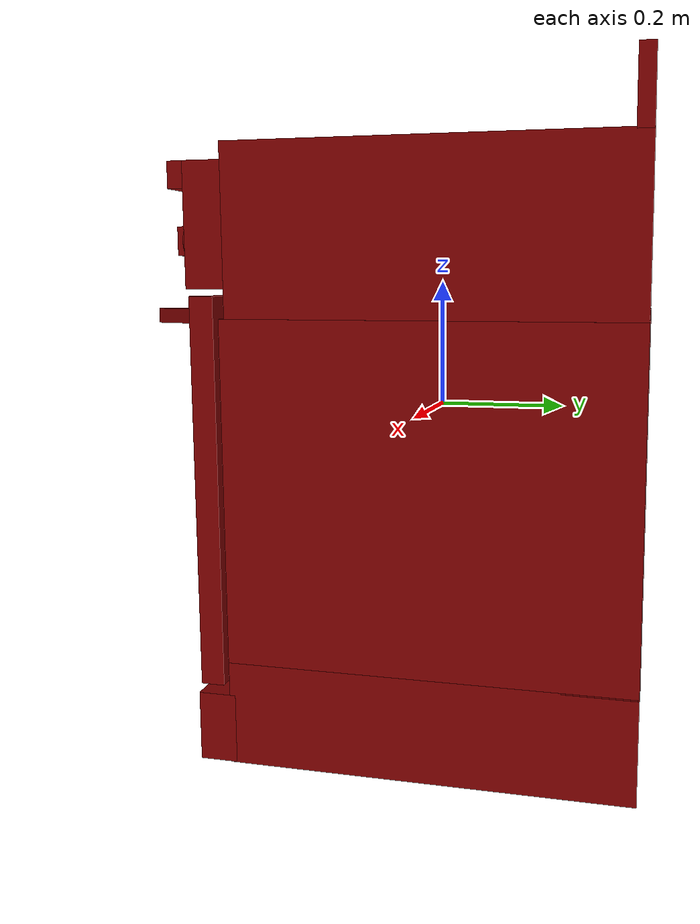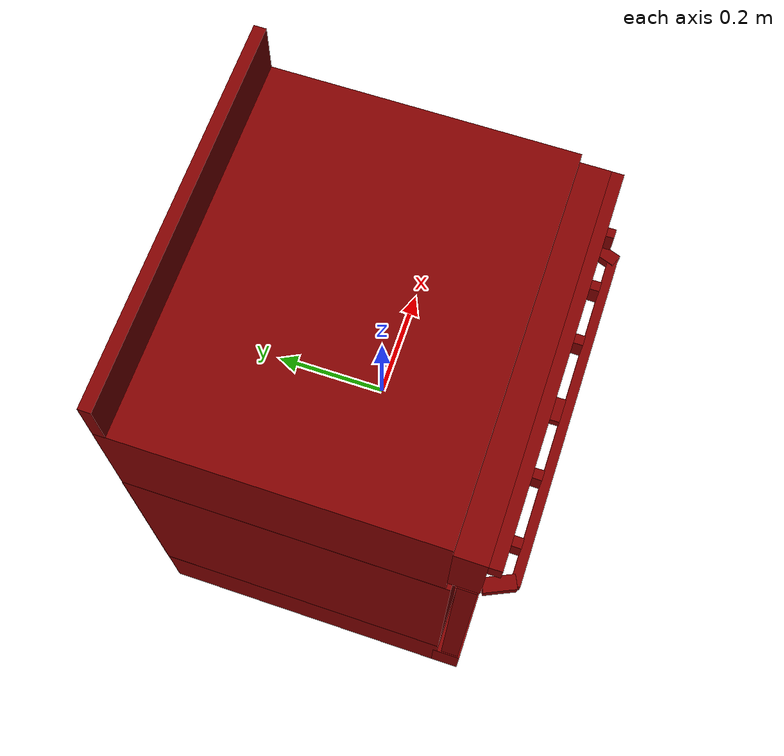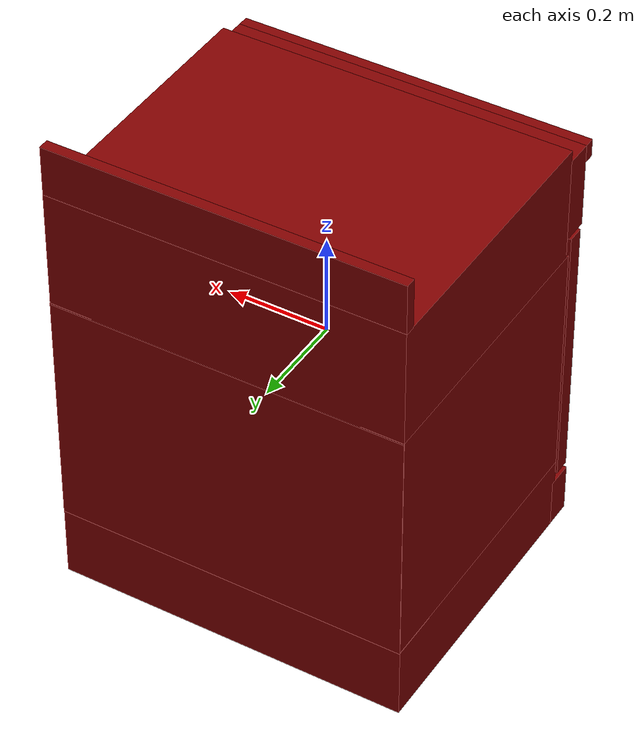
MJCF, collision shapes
<?xml version='1.0' encoding='UTF-8'?>
<mujoco model="model">
  <compiler angle="radian"/>
  <asset>
    <mesh file="visuals/knob_front_left.obj" name="knob_front_left_vis"/>
    <mesh file="visuals/knob_front_right.obj" name="knob_front_right_vis"/>
    <mesh file="visuals/knob_rear_left.obj" name="knob_rear_left_vis"/>
    <mesh file="visuals/knob_rear_right.obj" name="knob_rear_right_vis"/>
    <mesh file="visuals/Body001.obj" name="Body001_vis"/>
    <mesh file="visuals/Door001.obj" name="Door001_vis"/>
    <mesh file="visuals/Door001_Clear.obj" name="Door001_Clear_vis"/>
    <mesh file="visuals/Knob001.obj" name="Knob001_vis"/>
    <mesh file="visuals/Knob002.obj" name="Knob002_vis"/>
    <mesh file="visuals/Shelf001.obj" name="Shelf001_vis"/>
    <mesh file="visuals/Shelf002.obj" name="Shelf002_vis"/>
    <texture file="visuals/T_BC001.png" name="Body001_material" type="2d"/>
    <material name="Body001_material" rgba="1 1 1 1.0" texture="Body001_material" shininess="0.1" specular="3"/>
    <texture file="visuals/T_BC001.png" name="knob_front_left_material" type="2d"/>
    <material name="knob_front_left_material" rgba="1 1 1 1.0" texture="knob_front_left_material" shininess="0.1" specular="1"/>
    <texture file="visuals/T_BC001.png" name="knob_front_right_material" type="2d"/>
    <material name="knob_front_right_material" rgba="1 1 1 1.0" texture="knob_front_right_material" shininess="0.1" specular="1"/>
    <texture file="visuals/T_BC001.png" name="knob_rear_left_material" type="2d"/>
    <material name="knob_rear_left_material" rgba="1 1 1 1.0" texture="knob_rear_left_material" shininess="0.1" specular="1"/>
    <texture file="visuals/T_BC001.png" name="knob_rear_right_material" type="2d"/>
    <material name="knob_rear_right_material" rgba="1 1 1 1.0" texture="knob_rear_right_material" shininess="0.1" specular="1"/>
    <texture file="visuals/T_BC001.png" name="Door001_material" type="2d"/>
    <material name="Door001_material" rgba="1 1 1 1.0" texture="Door001_material" shininess="0.1" specular="1"/>
    <texture file="visuals/T_BC001.png" name="Door001_Clear_material" type="2d"/>
    <material name="Door001_Clear_material" rgba="1 1 1 0.5" texture="Door001_Clear_material" shininess="0.1" specular="1"/>
    <texture file="visuals/T_BC001.png" name="Knob001_material" type="2d"/>
    <material name="Knob001_material" rgba="1 1 1 1.0" texture="Knob001_material" shininess="0.1" specular="1"/>
    <texture file="visuals/T_BC001.png" name="Knob002_material" type="2d"/>
    <material name="Knob002_material" rgba="1 1 1 1.0" texture="Knob002_material" shininess="0.1" specular="1"/>
    <texture file="visuals/T_BC001.png" name="Shelf001_material" type="2d"/>
    <material name="Shelf001_material" rgba="1 1 1 1.0" texture="Shelf001_material" shininess="0.1" specular="1"/>
    <texture file="visuals/T_BC001.png" name="Shelf002_material" type="2d"/>
    <material name="Shelf002_material" rgba="1 1 1 1.0" texture="Shelf002_material" shininess="0.1" specular="1"/>
  </asset>
  <default>
    <default class="visual">
      <geom conaffinity="0" contype="0" group="1" type="mesh"/>
    </default>
    <default class="collision">
      <geom group="0" rgba="0.5 0 0 0.5"/>
    </default>
    <default class="spawn">
      <geom group="0" rgba="1 1 1 0.5" contype="0" conaffinity="0"/>
      <site group="0" rgba="1 1 1 0.5"/>
    </default>
    <default class="region">
      <geom group="1" conaffinity="0" contype="0" rgba="0 1 0 0"/>
    </default>
  </default>
  <worldbody>
    <body>
      <body name="object">
        <site type="cylinder" rgba="0.3 0.4 1 0.5" size="0.04274687170982361 0.008889059536159039" pos="0.15967822074890137 0.17787054181098938 0.3574436604976654" name="burner_on_rear_right"/>
        <site type="cylinder" rgba="0.3 0.4 1 0.5" size="0.04606814682483673 0.008889058604836464" pos="0.1597423553466797 -0.08112291246652603 0.3574436604976654" name="burner_on_front_right"/>
        <site type="cylinder" rgba="0.3 0.4 1 0.5" size="0.037669356912374496 0.008889059536159039" pos="-0.16014519333839417 -0.08022329956293106 0.3574436604976654" name="burner_on_front_left"/>
        <site type="cylinder" rgba="0.3 0.4 1 0.5" size="0.03731134906411171 0.008889059536159039" pos="-0.16021078824996948 0.1778567135334015 0.3574436604976654" name="burner_on_rear_left"/>
        <geom mesh="Body001_vis" type="mesh" solimp="0.998 0.998 0.001" solref="0.001 1" density="100" friction="0.95 0.3 0.1" class="visual" material="Body001_material"/>
        <geom class="collision" type="box" pos="-0.00014746803208254278 0.05135912820696831 -0.4064618647098541" size="0.34942737221717834 0.28487372398376465 0.07652396708726883" quat="1.0 0.0 0.0 0.0"/>
        <geom class="collision" type="box" pos="-0.00014746803208254278 0.2861902415752411 -0.09431956708431244" size="0.34942737221717834 0.050824426114559174 0.24223265051841736" quat="1.0 0.0 0.0 0.0"/>
        <geom class="collision" type="box" pos="-0.00014746803208254278 0.055293865501880646 0.2639613151550293" size="0.34942737221717834 0.2807837128639221 0.12020580470561981" quat="1.0 0.0 0.0 0.0"/>
        <geom class="collision" type="box" pos="-0.0001474630698794499 -0.25239092111587524 0.27547764778137207" size="0.3494277000427246 0.02705969661474228 0.08506572991609573" quat="1.0 0.0 0.0 0.0"/>
        <geom class="collision" type="box" pos="-0.0001474605523981154 0.32500842213630676 0.43238362669944763" size="0.34942758083343506 0.010730232112109661 0.050436194986104965" quat="1.0 0.0 0.0 0.0"/>
        <geom class="collision" type="box" pos="-0.0001474668097216636 -0.27820074558258057 0.34203529357910156" size="0.3494274616241455 0.022705255076289177 0.018246155232191086" quat="1.0 0.0 0.0 0.0"/>
        <geom class="collision" type="box" pos="-0.0001474727177992463 -0.25263890624046326 -0.4327547252178192" size="0.34942758083343506 0.027300572022795677 0.049705494195222855" quat="1.0 0.0 0.0 0.0"/>
        <geom class="collision" type="box" pos="-0.30808332562446594 0.05135912075638771 -0.09207580983638763" size="0.04168785735964775 0.2848801910877228 0.24247300624847412" quat="1.0 0.0 0.0 0.0"/>
        <geom class="collision" type="box" pos="0.3076491057872772 0.05135912075638771 -0.09207580983638763" size="0.04201505705714226 0.2848798930644989 0.2424728125333786" quat="1.0 0.0 0.0 0.0"/>
        <body name="knob_front_left">
          <joint axis="0.0 -1.0 0.0" pos="-0.2754005193710327 -0.2984381914138794 0.2563842535018921" limited="true" name="knob_front_left_joint" range="0.0 3.3161255787892263" type="hinge" damping="0.05" armature="0.001"/>
          <geom mesh="knob_front_left_vis" type="mesh" solimp="0.998 0.998 0.001" solref="0.001 1" density="100" friction="0.95 0.3 0.1" class="visual" material="knob_front_left_material"/>
          <geom class="collision" type="cylinder" pos="-0.2757011950016022 -0.2924758195877075 0.2560778260231018" size="0.026179928332567215 0.0076294029131531715" quat="0.7071067094802856 0.70710688829422 0.0 0.0"/>
          <geom class="collision" type="box" pos="-0.27576297521591187 -0.30898553133010864 0.25702792406082153" size="0.008614372462034225 0.009282308630645275 0.020264428108930588" quat="1.0 0.0 0.0 0.0" name="knob_front_left_main"/>
        </body>
        <body name="knob_front_right">
          <joint axis="0.0 -1.0 0.0" pos="0.28673580288887024 -0.2984381914138794 0.2563842535018921" limited="true" name="knob_front_right_joint" range="0.0 3.368485456349056" type="hinge" damping="0.05" armature="0.001"/>
          <geom mesh="knob_front_right_vis" type="mesh" solimp="0.998 0.998 0.001" solref="0.001 1" density="100" friction="0.95 0.3 0.1" class="visual" material="knob_front_right_material"/>
          <geom class="collision" type="box" pos="0.28748977184295654 -0.30898553133010864 0.25702792406082153" size="0.008614372462034225 0.007597616408020258 0.0202644020318985" quat="1.0 0.0 0.0 0.0" name="knob_front_right_main"/>
          <geom class="collision" type="cylinder" pos="0.287524938583374 -0.2924758195877075 0.2560778260231018" size="0.026179928332567215 0.0076294029131531715" quat="0.7071067094802856 0.70710688829422 0.0 0.0"/>
        </body>
        <body name="knob_rear_left">
          <joint axis="0.0 -1.0 0.0" pos="-0.1616622656583786 -0.2984381914138794 0.2563842535018921" limited="true" name="knob_rear_left_joint" range="0.0 3.3161255787892263" type="hinge" damping="0.05" armature="0.001"/>
          <geom mesh="knob_rear_left_vis" type="mesh" solimp="0.998 0.998 0.001" solref="0.001 1" density="100" friction="0.95 0.3 0.1" class="visual" material="knob_rear_left_material"/>
          <geom class="collision" type="cylinder" pos="-0.1614503115415573 -0.2924758195877075 0.2560778260231018" size="0.026179928332567215 0.0076294029131531715" quat="0.7071067094802856 0.70710688829422 0.0 0.0"/>
          <geom class="collision" type="box" pos="-0.1615120768547058 -0.30898553133010864 0.25702792406082153" size="0.008614372462034225 0.009282300248742104 0.020264428108930588" quat="1.0 0.0 0.0 0.0" name="knob_rear_left_main"/>
        </body>
        <body name="knob_rear_right">
          <joint axis="0.0 -1.0 0.0" pos="0.18417790532112122 -0.2984381914138794 0.2563842535018921" limited="true" name="knob_rear_right_joint" range="0.0 3.4033920413889422" type="hinge" damping="0.05" armature="0.001"/>
          <geom mesh="knob_rear_right_vis" type="mesh" solimp="0.998 0.998 0.001" solref="0.001 1" density="100" friction="0.95 0.3 0.1" class="visual" material="knob_rear_right_material"/>
          <geom class="collision" type="cylinder" pos="0.18332833051681519 -0.2924758195877075 0.2560778260231018" size="0.026179928332567215 0.0076294029131531715" quat="0.7071067094802856 0.70710688829422 0.0 0.0"/>
          <geom class="collision" type="box" pos="0.1832665652036667 -0.30898553133010864 0.25702792406082153" size="0.008614372462034225 0.009282290935516357 0.020264428108930588" quat="1.0 0.0 0.0 0.0" name="knob_rear_right_main"/>
        </body>
        <body name="Door001">
          <joint axis="1.0 0.0 0.0" pos="-7.106114935595542e-05 -0.28316956758499146 -0.37431401014328003" limited="true" name="Door001_joint" range="0.0 1.5707963267948966" type="hinge" damping="1" frictionloss="1" armature=".01" stiffness="0.05"/>
          <geom mesh="Door001_vis" type="mesh" solimp="0.998 0.998 0.001" solref="0.001 1" density="100" friction="0.95 0.3 0.1" class="visual" material="Door001_material"/>
          <geom class="collision" type="box" pos="-0.00014746803208254278 -0.2586946487426758 -0.09400005638599396" size="0.3494284451007843 0.016997987404465675 0.27487221360206604" quat="1.0 0.0 0.0 0.0"/>
          <geom class="collision" type="box" pos="-0.3170848488807678 -0.3034972548484802 0.1535831093788147" size="0.012553542852401733 0.027932176366448402 0.009833773598074913" quat="1.9360556962055853e-06 0.21596013009548187 -0.9764021635055542 4.28215685133182e-07"/>
          <geom class="collision" type="box" pos="0.3143838047981262 -0.30614203214645386 0.15364345908164978" size="0.011710848659276962 0.030119679868221283 0.009894125163555145" quat="1.9520919067872455e-06 -0.17544248700141907 -0.9844896793365479 -3.478755843389081e-07"/>
          <geom class="collision" type="box" pos="0.0003963177732657641 -0.32848870754241943 0.1529311239719391" size="0.31237438321113586 0.008542908355593681 0.009181818924844265" quat="1.0 0.0 0.0 0.0"/>
          <body name="Door001_Clear">
            <geom mesh="Door001_Clear_vis" type="mesh" solimp="0.998 0.998 0.001" solref="0.001 1" density="100" friction="0.95 0.3 0.1" class="visual" material="Door001_Clear_material"/>
            <geom class="collision" type="box" pos="-1.4901161193847656e-08 -0.27844947576522827 -0.09371771663427353" size="0.21943971514701843 0.001523040933534503 0.18236695230007172" quat="1.0 0.0 0.0 0.0"/>
          </body>
        </body>
        <body name="Knob001">
          <joint axis="0.0 1.0 0.0" pos="-0.04333847016096115 -0.2984381914138794 0.2563842535018921" limited="true" name="Knob001_joint" range="0.0 5.235987755982989" type="hinge" damping="0.05" armature="0.001"/>
          <geom mesh="Knob001_vis" type="mesh" solimp="0.998 0.998 0.001" solref="0.001 1" density="100" friction="0.95 0.3 0.1" class="visual" material="Knob001_material"/>
          <geom class="collision" type="box" pos="-0.043551236391067505 -0.30898553133010864 0.25702792406082153" size="0.020264392718672752 0.009282264858484268 0.008614293299615383" quat="1.0 0.0 0.0 0.0"/>
          <geom class="collision" type="cylinder" pos="-0.043489471077919006 -0.2924758195877075 0.2560778260231018" size="0.026179928332567215 0.0076294029131531715" quat="0.7071067094802856 0.70710688829422 0.0 0.0"/>
        </body>
        <body name="Knob002">
          <joint axis="0.0 1.0 0.0" pos="0.08086814731359482 -0.2984381914138794 0.2563842535018921" limited="true" name="Knob002_joint" range="0.0 5.585053606381854" type="hinge" damping="0.05" armature="0.001"/>
          <geom mesh="Knob002_vis" type="mesh" solimp="0.998 0.998 0.001" solref="0.001 1" density="100" friction="0.95 0.3 0.1" class="visual" material="Knob002_material"/>
          <geom class="collision" type="box" pos="0.0804431289434433 -0.30898553133010864 0.25702792406082153" size="0.008614372462034225 0.00928227324038744 0.020264428108930588" quat="1.0 0.0 0.0 0.0"/>
          <geom class="collision" type="cylinder" pos="0.0805048942565918 -0.2924758195877075 0.2560778260231018" size="0.026179928332567215 0.0076294029131531715" quat="0.7071067094802856 0.70710688829422 0.0 0.0"/>
        </body>
        <body name="Shelf001">
          <joint axis="0.0 -1.0 0.0" pos="-7.09610030753538e-05 0.008929535746574402 -0.16779346764087677" limited="true" name="Shelf001_joint" range="0.0 0.25" type="slide" damping="1" frictionloss="1" armature=".01" stiffness="0.05"/>
          <geom mesh="Shelf001_vis" type="mesh" solimp="0.998 0.998 0.001" solref="0.001 1" density="100" friction="0.95 0.3 0.1" class="visual" material="Shelf001_material"/>
          <geom class="collision" type="box" pos="-1.4901161193847656e-08 0.007976021617650986 -0.16747458279132843" size="0.24327406287193298 0.13824304938316345 0.00631850678473711" quat="1.0 0.0 0.0 0.0"/>
        </body>
        <body name="Shelf002">
          <joint axis="0.0 -1.0 0.0" pos="-7.09610030753538e-05 0.008929502218961716 -0.2592981457710266" limited="true" name="Shelf002_joint" range="0.0 0.25" type="slide" damping="1" frictionloss="1" armature=".01" stiffness="0.05"/>
          <geom mesh="Shelf002_vis" type="mesh" solimp="0.998 0.998 0.001" solref="0.001 1" density="100" friction="0.95 0.3 0.1" class="visual" material="Shelf002_material"/>
          <geom class="collision" type="box" pos="-1.4901161193847656e-08 0.007976021617650986 -0.25937944650650024" size="0.24327406287193298 0.13824304938316345 0.00631850678473711" quat="1.0 0.0 0.0 0.0"/>
        </body>
        <site name="burner_rear_right_place_site" type="cylinder" rgba="0.3 0.4 1 0" size="0.04274687170982361 0.008889059536159039" pos="0.15967822074890137 0.17787054181098938 0.3574436604976654"/>
        <site name="burner_front_right_place_site" type="cylinder" rgba="0.3 0.4 1 0" size="0.04606814682483673 0.008889058604836464" pos="0.1597423553466797 -0.08112291246652603 0.3574436604976654"/>
        <site name="burner_front_left_place_site" type="cylinder" rgba="0.3 0.4 1 0" size="0.037669356912374496 0.008889059536159039" pos="-0.16014519333839417 -0.08022329956293106 0.3574436604976654"/>
        <site name="burner_rear_left_place_site" type="cylinder" rgba="0.3 0.4 1 0" size="0.03731134906411171 0.008889059536159039" pos="-0.16021078824996948 0.1778567135334015 0.3574436604976654"/>
        <geom class="region" name="reg_main" type="box" pos="-7.10710883140564e-05 0.028506413102149963 -0.06109040975570679" size="0.3502565324306488 0.3089439272880554 0.4230033755302429"/>
        <geom class="region" name="reg_int" type="box" pos="9.849667549133301e-05 0.007395438849925995 -0.09506770223379135" size="0.26925793290138245 0.22778254002332687 0.23929498344659805"/>
      </body>
    </body>
  </worldbody>
  <actuator>
    <motor name="knob_front_left_joint_actuator" joint="knob_front_left_joint" gear="10"/>
    <motor name="knob_front_right_joint_actuator" joint="knob_front_right_joint" gear="10"/>
    <motor name="knob_rear_left_joint_actuator" joint="knob_rear_left_joint" gear="10"/>
    <motor name="knob_rear_right_joint_actuator" joint="knob_rear_right_joint" gear="10"/>
    <motor name="Door001_joint_actuator" joint="Door001_joint" gear="50"/>
    <motor name="Knob001_joint_actuator" joint="Knob001_joint" gear="50"/>
    <motor name="Knob002_joint_actuator" joint="Knob002_joint" gear="50"/>
    <motor name="Shelf001_joint_actuator" joint="Shelf001_joint" gear="50"/>
    <motor name="Shelf002_joint_actuator" joint="Shelf002_joint" gear="50"/>
  </actuator>
</mujoco>
